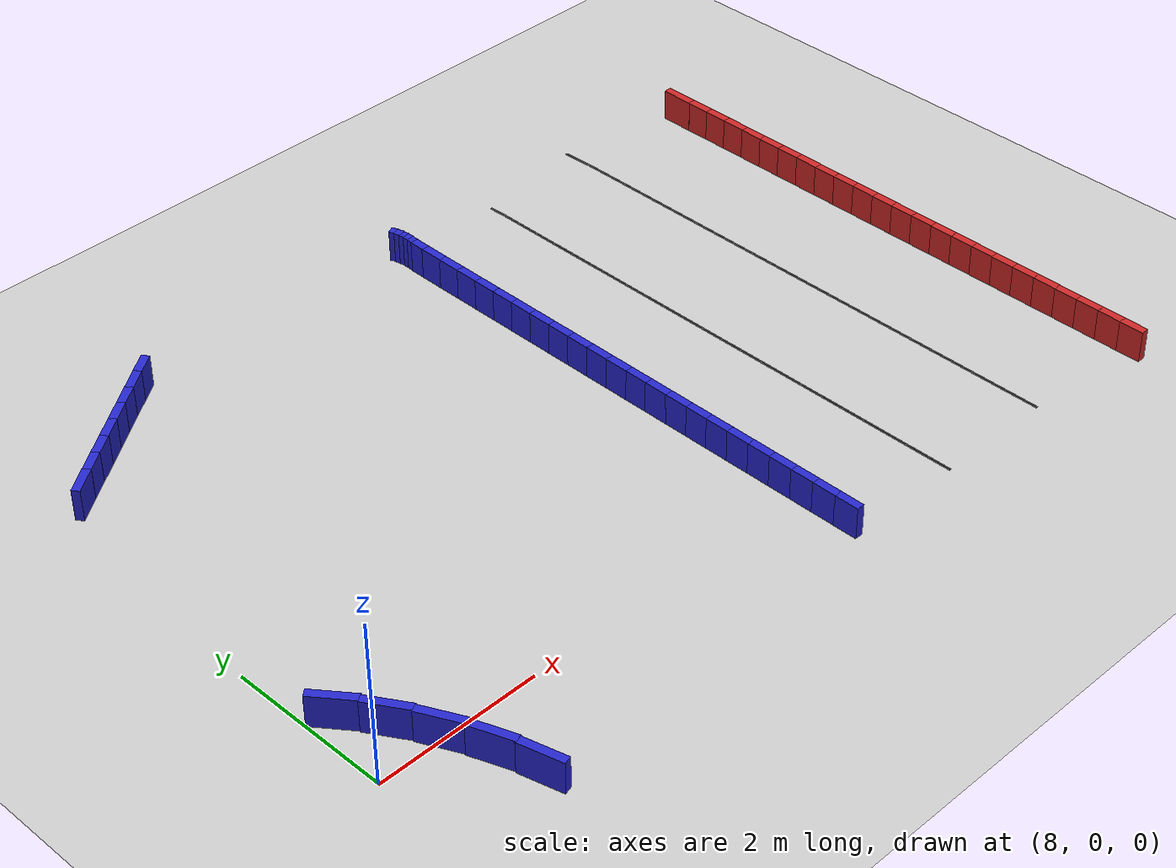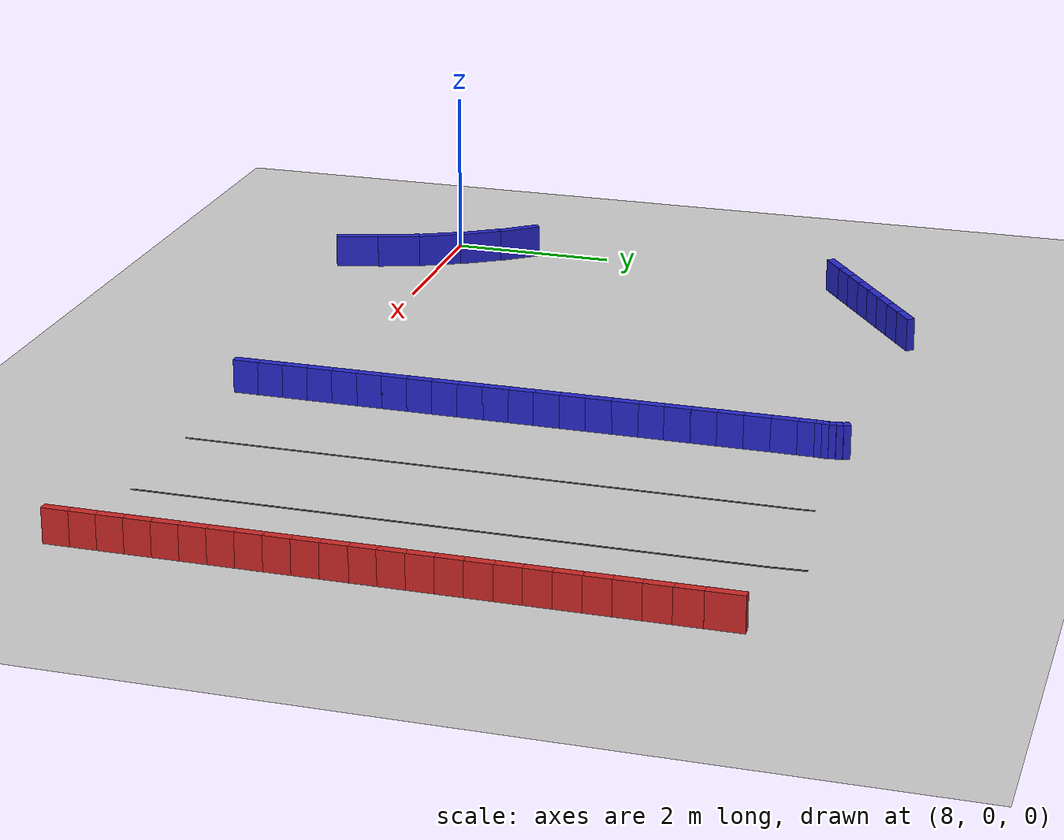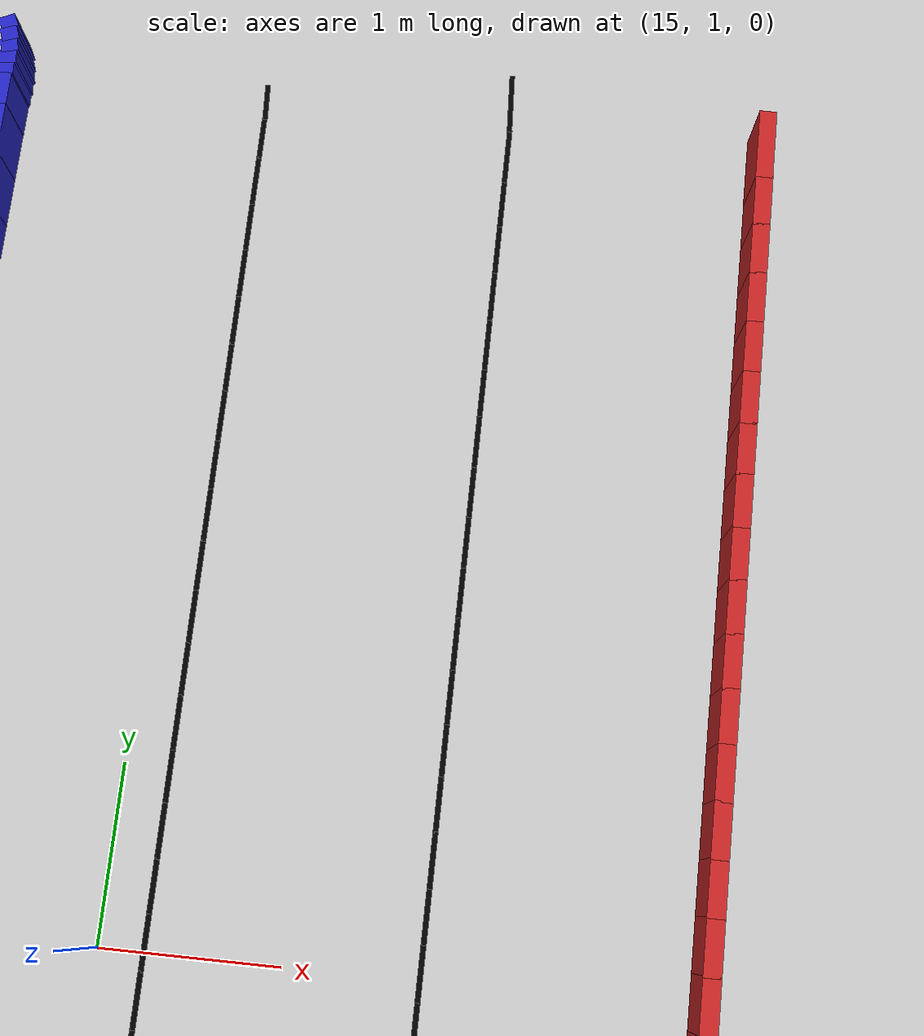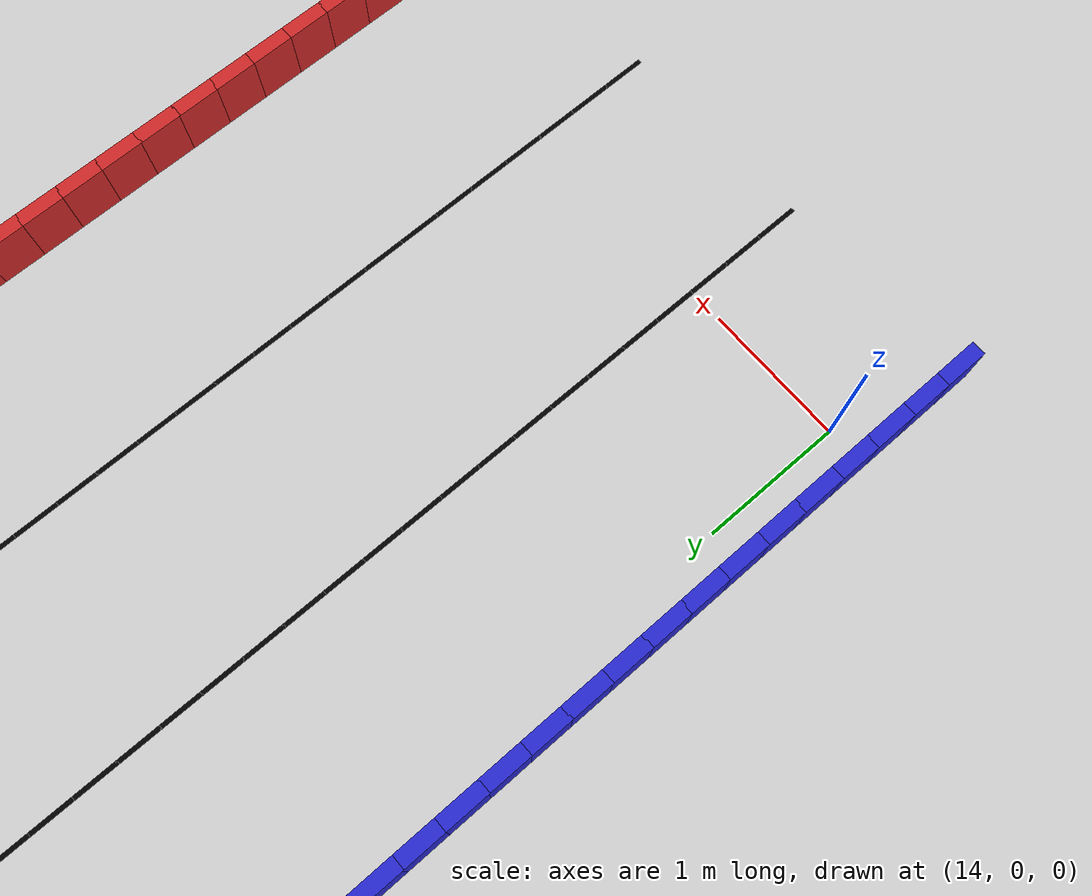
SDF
<sdf version="1.6">
 <world name="3lane_track">
  <include><uri>model://ground_plane</uri></include>
  <include><uri>model://sun</uri></include>
  <model name="iw_98">
   <static>true</static>
   <pose>8.2136 0.8677 0.200 0 0 -0.9121</pose>
   <link name="l">
    <collision name="c"><geometry><box><size>0.5416 0.1 0.4</size></box></geometry></collision>
    <visual name="v">
     <geometry><box><size>0.5416 0.1 0.4</size></box></geometry>
     <material><ambient>0.15 0.15 0.8 1</ambient><diffuse>0.15 0.15 0.8 1</diffuse></material>
    </visual>
   </link>
  </model>
  <model name="iw_99">
   <static>true</static>
   <pose>8.5074 0.4254 0.200 0 0 -1.0134</pose>
   <link name="l">
    <collision name="c"><geometry><box><size>0.5416 0.1 0.4</size></box></geometry></collision>
    <visual name="v">
     <geometry><box><size>0.5416 0.1 0.4</size></box></geometry>
     <material><ambient>0.15 0.15 0.8 1</ambient><diffuse>0.15 0.15 0.8 1</diffuse></material>
    </visual>
   </link>
  </model>
  <model name="iw_100">
   <static>true</static>
   <pose>8.7550 -0.0444 0.200 0 0 -1.1148</pose>
   <link name="l">
    <collision name="c"><geometry><box><size>0.5416 0.1 0.4</size></box></geometry></collision>
    <visual name="v">
     <geometry><box><size>0.5416 0.1 0.4</size></box></geometry>
     <material><ambient>0.15 0.15 0.8 1</ambient><diffuse>0.15 0.15 0.8 1</diffuse></material>
    </visual>
   </link>
  </model>
  <model name="iw_101">
   <static>true</static>
   <pose>8.9537 -0.5367 0.200 0 0 -1.2161</pose>
   <link name="l">
    <collision name="c"><geometry><box><size>0.5416 0.1 0.4</size></box></geometry></collision>
    <visual name="v">
     <geometry><box><size>0.5416 0.1 0.4</size></box></geometry>
     <material><ambient>0.15 0.15 0.8 1</ambient><diffuse>0.15 0.15 0.8 1</diffuse></material>
    </visual>
   </link>
  </model>
  <model name="iw_102">
   <static>true</static>
   <pose>9.1016 -1.0467 0.200 0 0 -1.3174</pose>
   <link name="l">
    <collision name="c"><geometry><box><size>0.5416 0.1 0.4</size></box></geometry></collision>
    <visual name="v">
     <geometry><box><size>0.5416 0.1 0.4</size></box></geometry>
     <material><ambient>0.15 0.15 0.8 1</ambient><diffuse>0.15 0.15 0.8 1</diffuse></material>
    </visual>
   </link>
  </model>
  <model name="iw_176">
   <static>true</static>
   <pose>13.7500 -0.7500 0.200 0 0 1.5708</pose>
   <link name="l">
    <collision name="c"><geometry><box><size>0.3100 0.1 0.4</size></box></geometry></collision>
    <visual name="v">
     <geometry><box><size>0.3100 0.1 0.4</size></box></geometry>
     <material><ambient>0.15 0.15 0.8 1</ambient><diffuse>0.15 0.15 0.8 1</diffuse></material>
    </visual>
   </link>
  </model>
  <model name="iw_177">
   <static>true</static>
   <pose>13.7500 -0.4500 0.200 0 0 1.5708</pose>
   <link name="l">
    <collision name="c"><geometry><box><size>0.3100 0.1 0.4</size></box></geometry></collision>
    <visual name="v">
     <geometry><box><size>0.3100 0.1 0.4</size></box></geometry>
     <material><ambient>0.15 0.15 0.8 1</ambient><diffuse>0.15 0.15 0.8 1</diffuse></material>
    </visual>
   </link>
  </model>
  <model name="iw_178">
   <static>true</static>
   <pose>13.7500 -0.1500 0.200 0 0 1.5708</pose>
   <link name="l">
    <collision name="c"><geometry><box><size>0.3100 0.1 0.4</size></box></geometry></collision>
    <visual name="v">
     <geometry><box><size>0.3100 0.1 0.4</size></box></geometry>
     <material><ambient>0.15 0.15 0.8 1</ambient><diffuse>0.15 0.15 0.8 1</diffuse></material>
    </visual>
   </link>
  </model>
  <model name="iw_179">
   <static>true</static>
   <pose>13.7500 0.1500 0.200 0 0 1.5708</pose>
   <link name="l">
    <collision name="c"><geometry><box><size>0.3100 0.1 0.4</size></box></geometry></collision>
    <visual name="v">
     <geometry><box><size>0.3100 0.1 0.4</size></box></geometry>
     <material><ambient>0.15 0.15 0.8 1</ambient><diffuse>0.15 0.15 0.8 1</diffuse></material>
    </visual>
   </link>
  </model>
  <model name="iw_180">
   <static>true</static>
   <pose>13.7500 0.4500 0.200 0 0 1.5708</pose>
   <link name="l">
    <collision name="c"><geometry><box><size>0.3100 0.1 0.4</size></box></geometry></collision>
    <visual name="v">
     <geometry><box><size>0.3100 0.1 0.4</size></box></geometry>
     <material><ambient>0.15 0.15 0.8 1</ambient><diffuse>0.15 0.15 0.8 1</diffuse></material>
    </visual>
   </link>
  </model>
  <model name="iw_181">
   <static>true</static>
   <pose>13.7500 0.7500 0.200 0 0 1.5708</pose>
   <link name="l">
    <collision name="c"><geometry><box><size>0.3100 0.1 0.4</size></box></geometry></collision>
    <visual name="v">
     <geometry><box><size>0.3100 0.1 0.4</size></box></geometry>
     <material><ambient>0.15 0.15 0.8 1</ambient><diffuse>0.15 0.15 0.8 1</diffuse></material>
    </visual>
   </link>
  </model>
  <model name="iw_182">
   <static>true</static>
   <pose>13.7500 1.0500 0.200 0 0 1.5708</pose>
   <link name="l">
    <collision name="c"><geometry><box><size>0.3100 0.1 0.4</size></box></geometry></collision>
    <visual name="v">
     <geometry><box><size>0.3100 0.1 0.4</size></box></geometry>
     <material><ambient>0.15 0.15 0.8 1</ambient><diffuse>0.15 0.15 0.8 1</diffuse></material>
    </visual>
   </link>
  </model>
  <model name="iw_183">
   <static>true</static>
   <pose>13.7500 1.3500 0.200 0 0 1.5708</pose>
   <link name="l">
    <collision name="c"><geometry><box><size>0.3100 0.1 0.4</size></box></geometry></collision>
    <visual name="v">
     <geometry><box><size>0.3100 0.1 0.4</size></box></geometry>
     <material><ambient>0.15 0.15 0.8 1</ambient><diffuse>0.15 0.15 0.8 1</diffuse></material>
    </visual>
   </link>
  </model>
  <model name="iw_184">
   <static>true</static>
   <pose>13.7500 1.6500 0.200 0 0 1.5708</pose>
   <link name="l">
    <collision name="c"><geometry><box><size>0.3100 0.1 0.4</size></box></geometry></collision>
    <visual name="v">
     <geometry><box><size>0.3100 0.1 0.4</size></box></geometry>
     <material><ambient>0.15 0.15 0.8 1</ambient><diffuse>0.15 0.15 0.8 1</diffuse></material>
    </visual>
   </link>
  </model>
  <model name="iw_185">
   <static>true</static>
   <pose>13.7500 1.9500 0.200 0 0 1.5708</pose>
   <link name="l">
    <collision name="c"><geometry><box><size>0.3100 0.1 0.4</size></box></geometry></collision>
    <visual name="v">
     <geometry><box><size>0.3100 0.1 0.4</size></box></geometry>
     <material><ambient>0.15 0.15 0.8 1</ambient><diffuse>0.15 0.15 0.8 1</diffuse></material>
    </visual>
   </link>
  </model>
  <model name="iw_186">
   <static>true</static>
   <pose>13.7500 2.2500 0.200 0 0 1.5708</pose>
   <link name="l">
    <collision name="c"><geometry><box><size>0.3100 0.1 0.4</size></box></geometry></collision>
    <visual name="v">
     <geometry><box><size>0.3100 0.1 0.4</size></box></geometry>
     <material><ambient>0.15 0.15 0.8 1</ambient><diffuse>0.15 0.15 0.8 1</diffuse></material>
    </visual>
   </link>
  </model>
  <model name="iw_187">
   <static>true</static>
   <pose>13.7500 2.5500 0.200 0 0 1.5708</pose>
   <link name="l">
    <collision name="c"><geometry><box><size>0.3100 0.1 0.4</size></box></geometry></collision>
    <visual name="v">
     <geometry><box><size>0.3100 0.1 0.4</size></box></geometry>
     <material><ambient>0.15 0.15 0.8 1</ambient><diffuse>0.15 0.15 0.8 1</diffuse></material>
    </visual>
   </link>
  </model>
  <model name="iw_188">
   <static>true</static>
   <pose>13.7500 2.8500 0.200 0 0 1.5708</pose>
   <link name="l">
    <collision name="c"><geometry><box><size>0.3100 0.1 0.4</size></box></geometry></collision>
    <visual name="v">
     <geometry><box><size>0.3100 0.1 0.4</size></box></geometry>
     <material><ambient>0.15 0.15 0.8 1</ambient><diffuse>0.15 0.15 0.8 1</diffuse></material>
    </visual>
   </link>
  </model>
  <model name="iw_189">
   <static>true</static>
   <pose>13.7500 3.1500 0.200 0 0 1.5708</pose>
   <link name="l">
    <collision name="c"><geometry><box><size>0.3100 0.1 0.4</size></box></geometry></collision>
    <visual name="v">
     <geometry><box><size>0.3100 0.1 0.4</size></box></geometry>
     <material><ambient>0.15 0.15 0.8 1</ambient><diffuse>0.15 0.15 0.8 1</diffuse></material>
    </visual>
   </link>
  </model>
  <model name="iw_190">
   <static>true</static>
   <pose>13.7500 3.4500 0.200 0 0 1.5708</pose>
   <link name="l">
    <collision name="c"><geometry><box><size>0.3100 0.1 0.4</size></box></geometry></collision>
    <visual name="v">
     <geometry><box><size>0.3100 0.1 0.4</size></box></geometry>
     <material><ambient>0.15 0.15 0.8 1</ambient><diffuse>0.15 0.15 0.8 1</diffuse></material>
    </visual>
   </link>
  </model>
  <model name="iw_191">
   <static>true</static>
   <pose>13.7500 3.7500 0.200 0 0 1.5708</pose>
   <link name="l">
    <collision name="c"><geometry><box><size>0.3100 0.1 0.4</size></box></geometry></collision>
    <visual name="v">
     <geometry><box><size>0.3100 0.1 0.4</size></box></geometry>
     <material><ambient>0.15 0.15 0.8 1</ambient><diffuse>0.15 0.15 0.8 1</diffuse></material>
    </visual>
   </link>
  </model>
  <model name="iw_192">
   <static>true</static>
   <pose>13.7500 4.0500 0.200 0 0 1.5708</pose>
   <link name="l">
    <collision name="c"><geometry><box><size>0.3100 0.1 0.4</size></box></geometry></collision>
    <visual name="v">
     <geometry><box><size>0.3100 0.1 0.4</size></box></geometry>
     <material><ambient>0.15 0.15 0.8 1</ambient><diffuse>0.15 0.15 0.8 1</diffuse></material>
    </visual>
   </link>
  </model>
  <model name="iw_193">
   <static>true</static>
   <pose>13.7500 4.3500 0.200 0 0 1.5708</pose>
   <link name="l">
    <collision name="c"><geometry><box><size>0.3100 0.1 0.4</size></box></geometry></collision>
    <visual name="v">
     <geometry><box><size>0.3100 0.1 0.4</size></box></geometry>
     <material><ambient>0.15 0.15 0.8 1</ambient><diffuse>0.15 0.15 0.8 1</diffuse></material>
    </visual>
   </link>
  </model>
  <model name="iw_194">
   <static>true</static>
   <pose>13.7500 4.6500 0.200 0 0 1.5708</pose>
   <link name="l">
    <collision name="c"><geometry><box><size>0.3100 0.1 0.4</size></box></geometry></collision>
    <visual name="v">
     <geometry><box><size>0.3100 0.1 0.4</size></box></geometry>
     <material><ambient>0.15 0.15 0.8 1</ambient><diffuse>0.15 0.15 0.8 1</diffuse></material>
    </visual>
   </link>
  </model>
  <model name="iw_195">
   <static>true</static>
   <pose>13.7500 4.9500 0.200 0 0 1.5708</pose>
   <link name="l">
    <collision name="c"><geometry><box><size>0.3100 0.1 0.4</size></box></geometry></collision>
    <visual name="v">
     <geometry><box><size>0.3100 0.1 0.4</size></box></geometry>
     <material><ambient>0.15 0.15 0.8 1</ambient><diffuse>0.15 0.15 0.8 1</diffuse></material>
    </visual>
   </link>
  </model>
  <model name="iw_196">
   <static>true</static>
   <pose>13.7500 5.2500 0.200 0 0 1.5708</pose>
   <link name="l">
    <collision name="c"><geometry><box><size>0.3100 0.1 0.4</size></box></geometry></collision>
    <visual name="v">
     <geometry><box><size>0.3100 0.1 0.4</size></box></geometry>
     <material><ambient>0.15 0.15 0.8 1</ambient><diffuse>0.15 0.15 0.8 1</diffuse></material>
    </visual>
   </link>
  </model>
  <model name="iw_197">
   <static>true</static>
   <pose>13.7500 5.5500 0.200 0 0 1.5708</pose>
   <link name="l">
    <collision name="c"><geometry><box><size>0.3100 0.1 0.4</size></box></geometry></collision>
    <visual name="v">
     <geometry><box><size>0.3100 0.1 0.4</size></box></geometry>
     <material><ambient>0.15 0.15 0.8 1</ambient><diffuse>0.15 0.15 0.8 1</diffuse></material>
    </visual>
   </link>
  </model>
  <model name="iw_198">
   <static>true</static>
   <pose>13.7514 5.7948 0.200 0 0 1.5708</pose>
   <link name="l">
    <collision name="c"><geometry><box><size>0.1996 0.1 0.4</size></box></geometry></collision>
    <visual name="v">
     <geometry><box><size>0.1996 0.1 0.4</size></box></geometry>
     <material><ambient>0.15 0.15 0.8 1</ambient><diffuse>0.15 0.15 0.8 1</diffuse></material>
    </visual>
   </link>
  </model>
  <model name="iw_199">
   <static>true</static>
   <pose>13.7563 5.9268 0.200 0 0 1.6199</pose>
   <link name="l">
    <collision name="c"><geometry><box><size>0.0847 0.1 0.4</size></box></geometry></collision>
    <visual name="v">
     <geometry><box><size>0.0847 0.1 0.4</size></box></geometry>
     <material><ambient>0.15 0.15 0.8 1</ambient><diffuse>0.15 0.15 0.8 1</diffuse></material>
    </visual>
   </link>
  </model>
  <model name="iw_200">
   <static>true</static>
   <pose>13.7598 6.0012 0.200 0 0 1.7181</pose>
   <link name="l">
    <collision name="c"><geometry><box><size>0.0847 0.1 0.4</size></box></geometry></collision>
    <visual name="v">
     <geometry><box><size>0.0847 0.1 0.4</size></box></geometry>
     <material><ambient>0.15 0.15 0.8 1</ambient><diffuse>0.15 0.15 0.8 1</diffuse></material>
    </visual>
   </link>
  </model>
  <model name="iw_201">
   <static>true</static>
   <pose>13.7561 6.0757 0.200 0 0 1.8162</pose>
   <link name="l">
    <collision name="c"><geometry><box><size>0.0847 0.1 0.4</size></box></geometry></collision>
    <visual name="v">
     <geometry><box><size>0.0847 0.1 0.4</size></box></geometry>
     <material><ambient>0.15 0.15 0.8 1</ambient><diffuse>0.15 0.15 0.8 1</diffuse></material>
    </visual>
   </link>
  </model>
  <model name="iw_202">
   <static>true</static>
   <pose>13.7450 6.1495 0.200 0 0 1.9144</pose>
   <link name="l">
    <collision name="c"><geometry><box><size>0.0847 0.1 0.4</size></box></geometry></collision>
    <visual name="v">
     <geometry><box><size>0.0847 0.1 0.4</size></box></geometry>
     <material><ambient>0.15 0.15 0.8 1</ambient><diffuse>0.15 0.15 0.8 1</diffuse></material>
    </visual>
   </link>
  </model>
  <model name="iw_203">
   <static>true</static>
   <pose>13.7268 6.2218 0.200 0 0 2.0126</pose>
   <link name="l">
    <collision name="c"><geometry><box><size>0.0847 0.1 0.4</size></box></geometry></collision>
    <visual name="v">
     <geometry><box><size>0.0847 0.1 0.4</size></box></geometry>
     <material><ambient>0.15 0.15 0.8 1</ambient><diffuse>0.15 0.15 0.8 1</diffuse></material>
    </visual>
   </link>
  </model>
  <model name="iw_229">
   <static>true</static>
   <pose>10.0943 6.2624 0.200 0 0 -2.5307</pose>
   <link name="l">
    <collision name="c"><geometry><box><size>0.2913 0.1 0.4</size></box></geometry></collision>
    <visual name="v">
     <geometry><box><size>0.2913 0.1 0.4</size></box></geometry>
     <material><ambient>0.15 0.15 0.8 1</ambient><diffuse>0.15 0.15 0.8 1</diffuse></material>
    </visual>
   </link>
  </model>
  <model name="iw_230">
   <static>true</static>
   <pose>9.8639 6.1011 0.200 0 0 -2.5307</pose>
   <link name="l">
    <collision name="c"><geometry><box><size>0.2913 0.1 0.4</size></box></geometry></collision>
    <visual name="v">
     <geometry><box><size>0.2913 0.1 0.4</size></box></geometry>
     <material><ambient>0.15 0.15 0.8 1</ambient><diffuse>0.15 0.15 0.8 1</diffuse></material>
    </visual>
   </link>
  </model>
  <model name="iw_231">
   <static>true</static>
   <pose>9.6335 5.9398 0.200 0 0 -2.5307</pose>
   <link name="l">
    <collision name="c"><geometry><box><size>0.2913 0.1 0.4</size></box></geometry></collision>
    <visual name="v">
     <geometry><box><size>0.2913 0.1 0.4</size></box></geometry>
     <material><ambient>0.15 0.15 0.8 1</ambient><diffuse>0.15 0.15 0.8 1</diffuse></material>
    </visual>
   </link>
  </model>
  <model name="iw_232">
   <static>true</static>
   <pose>9.4031 5.7785 0.200 0 0 -2.5307</pose>
   <link name="l">
    <collision name="c"><geometry><box><size>0.2913 0.1 0.4</size></box></geometry></collision>
    <visual name="v">
     <geometry><box><size>0.2913 0.1 0.4</size></box></geometry>
     <material><ambient>0.15 0.15 0.8 1</ambient><diffuse>0.15 0.15 0.8 1</diffuse></material>
    </visual>
   </link>
  </model>
  <model name="iw_233">
   <static>true</static>
   <pose>9.1727 5.6172 0.200 0 0 -2.5307</pose>
   <link name="l">
    <collision name="c"><geometry><box><size>0.2913 0.1 0.4</size></box></geometry></collision>
    <visual name="v">
     <geometry><box><size>0.2913 0.1 0.4</size></box></geometry>
     <material><ambient>0.15 0.15 0.8 1</ambient><diffuse>0.15 0.15 0.8 1</diffuse></material>
    </visual>
   </link>
  </model>
  <model name="iw_234">
   <static>true</static>
   <pose>8.9423 5.4558 0.200 0 0 -2.5307</pose>
   <link name="l">
    <collision name="c"><geometry><box><size>0.2913 0.1 0.4</size></box></geometry></collision>
    <visual name="v">
     <geometry><box><size>0.2913 0.1 0.4</size></box></geometry>
     <material><ambient>0.15 0.15 0.8 1</ambient><diffuse>0.15 0.15 0.8 1</diffuse></material>
    </visual>
   </link>
  </model>
  <model name="iw_235">
   <static>true</static>
   <pose>8.7119 5.2945 0.200 0 0 -2.5307</pose>
   <link name="l">
    <collision name="c"><geometry><box><size>0.2913 0.1 0.4</size></box></geometry></collision>
    <visual name="v">
     <geometry><box><size>0.2913 0.1 0.4</size></box></geometry>
     <material><ambient>0.15 0.15 0.8 1</ambient><diffuse>0.15 0.15 0.8 1</diffuse></material>
    </visual>
   </link>
  </model>
  <model name="iw_236">
   <static>true</static>
   <pose>8.4499 5.1118 0.200 0 0 -2.5307</pose>
   <link name="l">
    <collision name="c"><geometry><box><size>0.3676 0.1 0.4</size></box></geometry></collision>
    <visual name="v">
     <geometry><box><size>0.3676 0.1 0.4</size></box></geometry>
     <material><ambient>0.15 0.15 0.8 1</ambient><diffuse>0.15 0.15 0.8 1</diffuse></material>
    </visual>
   </link>
  </model>
  <model name="ow_175">
   <static>true</static>
   <pose>18.2500 -1.0500 0.200 0 0 1.5708</pose>
   <link name="l">
    <collision name="c"><geometry><box><size>0.3100 0.1 0.4</size></box></geometry></collision>
    <visual name="v">
     <geometry><box><size>0.3100 0.1 0.4</size></box></geometry>
     <material><ambient>0.8 0.15 0.15 1</ambient><diffuse>0.8 0.15 0.15 1</diffuse></material>
    </visual>
   </link>
  </model>
  <model name="ow_176">
   <static>true</static>
   <pose>18.2500 -0.7500 0.200 0 0 1.5708</pose>
   <link name="l">
    <collision name="c"><geometry><box><size>0.3100 0.1 0.4</size></box></geometry></collision>
    <visual name="v">
     <geometry><box><size>0.3100 0.1 0.4</size></box></geometry>
     <material><ambient>0.8 0.15 0.15 1</ambient><diffuse>0.8 0.15 0.15 1</diffuse></material>
    </visual>
   </link>
  </model>
  <model name="ow_177">
   <static>true</static>
   <pose>18.2500 -0.4500 0.200 0 0 1.5708</pose>
   <link name="l">
    <collision name="c"><geometry><box><size>0.3100 0.1 0.4</size></box></geometry></collision>
    <visual name="v">
     <geometry><box><size>0.3100 0.1 0.4</size></box></geometry>
     <material><ambient>0.8 0.15 0.15 1</ambient><diffuse>0.8 0.15 0.15 1</diffuse></material>
    </visual>
   </link>
  </model>
  <model name="ow_178">
   <static>true</static>
   <pose>18.2500 -0.1500 0.200 0 0 1.5708</pose>
   <link name="l">
    <collision name="c"><geometry><box><size>0.3100 0.1 0.4</size></box></geometry></collision>
    <visual name="v">
     <geometry><box><size>0.3100 0.1 0.4</size></box></geometry>
     <material><ambient>0.8 0.15 0.15 1</ambient><diffuse>0.8 0.15 0.15 1</diffuse></material>
    </visual>
   </link>
  </model>
  <model name="ow_179">
   <static>true</static>
   <pose>18.2500 0.1500 0.200 0 0 1.5708</pose>
   <link name="l">
    <collision name="c"><geometry><box><size>0.3100 0.1 0.4</size></box></geometry></collision>
    <visual name="v">
     <geometry><box><size>0.3100 0.1 0.4</size></box></geometry>
     <material><ambient>0.8 0.15 0.15 1</ambient><diffuse>0.8 0.15 0.15 1</diffuse></material>
    </visual>
   </link>
  </model>
  <model name="ow_180">
   <static>true</static>
   <pose>18.2500 0.4500 0.200 0 0 1.5708</pose>
   <link name="l">
    <collision name="c"><geometry><box><size>0.3100 0.1 0.4</size></box></geometry></collision>
    <visual name="v">
     <geometry><box><size>0.3100 0.1 0.4</size></box></geometry>
     <material><ambient>0.8 0.15 0.15 1</ambient><diffuse>0.8 0.15 0.15 1</diffuse></material>
    </visual>
   </link>
  </model>
  <model name="ow_181">
   <static>true</static>
   <pose>18.2500 0.7500 0.200 0 0 1.5708</pose>
   <link name="l">
    <collision name="c"><geometry><box><size>0.3100 0.1 0.4</size></box></geometry></collision>
    <visual name="v">
     <geometry><box><size>0.3100 0.1 0.4</size></box></geometry>
     <material><ambient>0.8 0.15 0.15 1</ambient><diffuse>0.8 0.15 0.15 1</diffuse></material>
    </visual>
   </link>
  </model>
  <model name="ow_182">
   <static>true</static>
   <pose>18.2500 1.0500 0.200 0 0 1.5708</pose>
   <link name="l">
    <collision name="c"><geometry><box><size>0.3100 0.1 0.4</size></box></geometry></collision>
    <visual name="v">
     <geometry><box><size>0.3100 0.1 0.4</size></box></geometry>
     <material><ambient>0.8 0.15 0.15 1</ambient><diffuse>0.8 0.15 0.15 1</diffuse></material>
    </visual>
   </link>
  </model>
  <model name="ow_183">
   <static>true</static>
   <pose>18.2500 1.3500 0.200 0 0 1.5708</pose>
   <link name="l">
    <collision name="c"><geometry><box><size>0.3100 0.1 0.4</size></box></geometry></collision>
    <visual name="v">
     <geometry><box><size>0.3100 0.1 0.4</size></box></geometry>
     <material><ambient>0.8 0.15 0.15 1</ambient><diffuse>0.8 0.15 0.15 1</diffuse></material>
    </visual>
   </link>
  </model>
  <model name="ow_184">
   <static>true</static>
   <pose>18.2500 1.6500 0.200 0 0 1.5708</pose>
   <link name="l">
    <collision name="c"><geometry><box><size>0.3100 0.1 0.4</size></box></geometry></collision>
    <visual name="v">
     <geometry><box><size>0.3100 0.1 0.4</size></box></geometry>
     <material><ambient>0.8 0.15 0.15 1</ambient><diffuse>0.8 0.15 0.15 1</diffuse></material>
    </visual>
   </link>
  </model>
  <model name="ow_185">
   <static>true</static>
   <pose>18.2500 1.9500 0.200 0 0 1.5708</pose>
   <link name="l">
    <collision name="c"><geometry><box><size>0.3100 0.1 0.4</size></box></geometry></collision>
    <visual name="v">
     <geometry><box><size>0.3100 0.1 0.4</size></box></geometry>
     <material><ambient>0.8 0.15 0.15 1</ambient><diffuse>0.8 0.15 0.15 1</diffuse></material>
    </visual>
   </link>
  </model>
  <model name="ow_186">
   <static>true</static>
   <pose>18.2500 2.2500 0.200 0 0 1.5708</pose>
   <link name="l">
    <collision name="c"><geometry><box><size>0.3100 0.1 0.4</size></box></geometry></collision>
    <visual name="v">
     <geometry><box><size>0.3100 0.1 0.4</size></box></geometry>
     <material><ambient>0.8 0.15 0.15 1</ambient><diffuse>0.8 0.15 0.15 1</diffuse></material>
    </visual>
   </link>
  </model>
  <model name="ow_187">
   <static>true</static>
   <pose>18.2500 2.5500 0.200 0 0 1.5708</pose>
   <link name="l">
    <collision name="c"><geometry><box><size>0.3100 0.1 0.4</size></box></geometry></collision>
    <visual name="v">
     <geometry><box><size>0.3100 0.1 0.4</size></box></geometry>
     <material><ambient>0.8 0.15 0.15 1</ambient><diffuse>0.8 0.15 0.15 1</diffuse></material>
    </visual>
   </link>
  </model>
  <model name="ow_188">
   <static>true</static>
   <pose>18.2500 2.8500 0.200 0 0 1.5708</pose>
   <link name="l">
    <collision name="c"><geometry><box><size>0.3100 0.1 0.4</size></box></geometry></collision>
    <visual name="v">
     <geometry><box><size>0.3100 0.1 0.4</size></box></geometry>
     <material><ambient>0.8 0.15 0.15 1</ambient><diffuse>0.8 0.15 0.15 1</diffuse></material>
    </visual>
   </link>
  </model>
  <model name="ow_189">
   <static>true</static>
   <pose>18.2500 3.1500 0.200 0 0 1.5708</pose>
   <link name="l">
    <collision name="c"><geometry><box><size>0.3100 0.1 0.4</size></box></geometry></collision>
    <visual name="v">
     <geometry><box><size>0.3100 0.1 0.4</size></box></geometry>
     <material><ambient>0.8 0.15 0.15 1</ambient><diffuse>0.8 0.15 0.15 1</diffuse></material>
    </visual>
   </link>
  </model>
  <model name="ow_190">
   <static>true</static>
   <pose>18.2500 3.4500 0.200 0 0 1.5708</pose>
   <link name="l">
    <collision name="c"><geometry><box><size>0.3100 0.1 0.4</size></box></geometry></collision>
    <visual name="v">
     <geometry><box><size>0.3100 0.1 0.4</size></box></geometry>
     <material><ambient>0.8 0.15 0.15 1</ambient><diffuse>0.8 0.15 0.15 1</diffuse></material>
    </visual>
   </link>
  </model>
  <model name="ow_191">
   <static>true</static>
   <pose>18.2500 3.7500 0.200 0 0 1.5708</pose>
   <link name="l">
    <collision name="c"><geometry><box><size>0.3100 0.1 0.4</size></box></geometry></collision>
    <visual name="v">
     <geometry><box><size>0.3100 0.1 0.4</size></box></geometry>
     <material><ambient>0.8 0.15 0.15 1</ambient><diffuse>0.8 0.15 0.15 1</diffuse></material>
    </visual>
   </link>
  </model>
  <model name="ow_192">
   <static>true</static>
   <pose>18.2500 4.0500 0.200 0 0 1.5708</pose>
   <link name="l">
    <collision name="c"><geometry><box><size>0.3100 0.1 0.4</size></box></geometry></collision>
    <visual name="v">
     <geometry><box><size>0.3100 0.1 0.4</size></box></geometry>
     <material><ambient>0.8 0.15 0.15 1</ambient><diffuse>0.8 0.15 0.15 1</diffuse></material>
    </visual>
   </link>
  </model>
  <model name="ow_193">
   <static>true</static>
   <pose>18.2500 4.3500 0.200 0 0 1.5708</pose>
   <link name="l">
    <collision name="c"><geometry><box><size>0.3100 0.1 0.4</size></box></geometry></collision>
    <visual name="v">
     <geometry><box><size>0.3100 0.1 0.4</size></box></geometry>
     <material><ambient>0.8 0.15 0.15 1</ambient><diffuse>0.8 0.15 0.15 1</diffuse></material>
    </visual>
   </link>
  </model>
  <model name="ow_194">
   <static>true</static>
   <pose>18.2500 4.6500 0.200 0 0 1.5708</pose>
   <link name="l">
    <collision name="c"><geometry><box><size>0.3100 0.1 0.4</size></box></geometry></collision>
    <visual name="v">
     <geometry><box><size>0.3100 0.1 0.4</size></box></geometry>
     <material><ambient>0.8 0.15 0.15 1</ambient><diffuse>0.8 0.15 0.15 1</diffuse></material>
    </visual>
   </link>
  </model>
  <model name="ow_195">
   <static>true</static>
   <pose>18.2500 4.9500 0.200 0 0 1.5708</pose>
   <link name="l">
    <collision name="c"><geometry><box><size>0.3100 0.1 0.4</size></box></geometry></collision>
    <visual name="v">
     <geometry><box><size>0.3100 0.1 0.4</size></box></geometry>
     <material><ambient>0.8 0.15 0.15 1</ambient><diffuse>0.8 0.15 0.15 1</diffuse></material>
    </visual>
   </link>
  </model>
  <model name="ow_196">
   <static>true</static>
   <pose>18.2500 5.2500 0.200 0 0 1.5708</pose>
   <link name="l">
    <collision name="c"><geometry><box><size>0.3100 0.1 0.4</size></box></geometry></collision>
    <visual name="v">
     <geometry><box><size>0.3100 0.1 0.4</size></box></geometry>
     <material><ambient>0.8 0.15 0.15 1</ambient><diffuse>0.8 0.15 0.15 1</diffuse></material>
    </visual>
   </link>
  </model>
  <model name="ow_197">
   <static>true</static>
   <pose>18.2500 5.5500 0.200 0 0 1.5708</pose>
   <link name="l">
    <collision name="c"><geometry><box><size>0.3100 0.1 0.4</size></box></geometry></collision>
    <visual name="v">
     <geometry><box><size>0.3100 0.1 0.4</size></box></geometry>
     <material><ambient>0.8 0.15 0.15 1</ambient><diffuse>0.8 0.15 0.15 1</diffuse></material>
    </visual>
   </link>
  </model>
  <model name="ow_198">
   <static>true</static>
   <pose>18.2486 5.9052 0.200 0 0 1.5708</pose>
   <link name="l">
    <collision name="c"><geometry><box><size>0.4204 0.1 0.4</size></box></geometry></collision>
    <visual name="v">
     <geometry><box><size>0.4204 0.1 0.4</size></box></geometry>
     <material><ambient>0.8 0.15 0.15 1</ambient><diffuse>0.8 0.15 0.15 1</diffuse></material>
    </visual>
   </link>
  </model>
  <model name="line_352">
   <static>true</static>
   <pose>15.2500 -0.7500 0.002 0 0 1.5708</pose>
   <link name="l">
    <visual name="v">
     <geometry><box><size>0.3100 0.03 0.002</size></box></geometry>
     <material><ambient>0 0 0 1</ambient><diffuse>0 0 0 1</diffuse></material>
    </visual>
   </link>
  </model>
  <model name="line_353">
   <static>true</static>
   <pose>16.7500 -0.7500 0.002 0 0 1.5708</pose>
   <link name="l">
    <visual name="v">
     <geometry><box><size>0.3100 0.03 0.002</size></box></geometry>
     <material><ambient>0 0 0 1</ambient><diffuse>0 0 0 1</diffuse></material>
    </visual>
   </link>
  </model>
  <model name="line_354">
   <static>true</static>
   <pose>15.2500 -0.4500 0.002 0 0 1.5708</pose>
   <link name="l">
    <visual name="v">
     <geometry><box><size>0.3100 0.03 0.002</size></box></geometry>
     <material><ambient>0 0 0 1</ambient><diffuse>0 0 0 1</diffuse></material>
    </visual>
   </link>
  </model>
  <model name="line_355">
   <static>true</static>
   <pose>16.7500 -0.4500 0.002 0 0 1.5708</pose>
   <link name="l">
    <visual name="v">
     <geometry><box><size>0.3100 0.03 0.002</size></box></geometry>
     <material><ambient>0 0 0 1</ambient><diffuse>0 0 0 1</diffuse></material>
    </visual>
   </link>
  </model>
  <model name="line_356">
   <static>true</static>
   <pose>15.2500 -0.1500 0.002 0 0 1.5708</pose>
   <link name="l">
    <visual name="v">
     <geometry><box><size>0.3100 0.03 0.002</size></box></geometry>
     <material><ambient>0 0 0 1</ambient><diffuse>0 0 0 1</diffuse></material>
    </visual>
   </link>
  </model>
  <model name="line_357">
   <static>true</static>
   <pose>16.7500 -0.1500 0.002 0 0 1.5708</pose>
   <link name="l">
    <visual name="v">
     <geometry><box><size>0.3100 0.03 0.002</size></box></geometry>
     <material><ambient>0 0 0 1</ambient><diffuse>0 0 0 1</diffuse></material>
    </visual>
   </link>
  </model>
  <model name="line_358">
   <static>true</static>
   <pose>15.2500 0.1500 0.002 0 0 1.5708</pose>
   <link name="l">
    <visual name="v">
     <geometry><box><size>0.3100 0.03 0.002</size></box></geometry>
     <material><ambient>0 0 0 1</ambient><diffuse>0 0 0 1</diffuse></material>
    </visual>
   </link>
  </model>
  <model name="line_359">
   <static>true</static>
   <pose>16.7500 0.1500 0.002 0 0 1.5708</pose>
   <link name="l">
    <visual name="v">
     <geometry><box><size>0.3100 0.03 0.002</size></box></geometry>
     <material><ambient>0 0 0 1</ambient><diffuse>0 0 0 1</diffuse></material>
    </visual>
   </link>
  </model>
  <model name="line_360">
   <static>true</static>
   <pose>15.2500 0.4500 0.002 0 0 1.5708</pose>
   <link name="l">
    <visual name="v">
     <geometry><box><size>0.3100 0.03 0.002</size></box></geometry>
     <material><ambient>0 0 0 1</ambient><diffuse>0 0 0 1</diffuse></material>
    </visual>
   </link>
  </model>
  <model name="line_361">
   <static>true</static>
   <pose>16.7500 0.4500 0.002 0 0 1.5708</pose>
   <link name="l">
    <visual name="v">
     <geometry><box><size>0.3100 0.03 0.002</size></box></geometry>
     <material><ambient>0 0 0 1</ambient><diffuse>0 0 0 1</diffuse></material>
    </visual>
   </link>
  </model>
  <model name="line_362">
   <static>true</static>
   <pose>15.2500 0.7500 0.002 0 0 1.5708</pose>
   <link name="l">
    <visual name="v">
     <geometry><box><size>0.3100 0.03 0.002</size></box></geometry>
     <material><ambient>0 0 0 1</ambient><diffuse>0 0 0 1</diffuse></material>
    </visual>
   </link>
  </model>
  <model name="line_363">
   <static>true</static>
   <pose>16.7500 0.7500 0.002 0 0 1.5708</pose>
   <link name="l">
    <visual name="v">
     <geometry><box><size>0.3100 0.03 0.002</size></box></geometry>
     <material><ambient>0 0 0 1</ambient><diffuse>0 0 0 1</diffuse></material>
    </visual>
   </link>
  </model>
  <model name="line_364">
   <static>true</static>
   <pose>15.2500 1.0500 0.002 0 0 1.5708</pose>
   <link name="l">
    <visual name="v">
     <geometry><box><size>0.3100 0.03 0.002</size></box></geometry>
     <material><ambient>0 0 0 1</ambient><diffuse>0 0 0 1</diffuse></material>
    </visual>
   </link>
  </model>
  <model name="line_365">
   <static>true</static>
   <pose>16.7500 1.0500 0.002 0 0 1.5708</pose>
   <link name="l">
    <visual name="v">
     <geometry><box><size>0.3100 0.03 0.002</size></box></geometry>
     <material><ambient>0 0 0 1</ambient><diffuse>0 0 0 1</diffuse></material>
    </visual>
   </link>
  </model>
  <model name="line_366">
   <static>true</static>
   <pose>15.2500 1.3500 0.002 0 0 1.5708</pose>
   <link name="l">
    <visual name="v">
     <geometry><box><size>0.3100 0.03 0.002</size></box></geometry>
     <material><ambient>0 0 0 1</ambient><diffuse>0 0 0 1</diffuse></material>
    </visual>
   </link>
  </model>
  <model name="line_367">
   <static>true</static>
   <pose>16.7500 1.3500 0.002 0 0 1.5708</pose>
   <link name="l">
    <visual name="v">
     <geometry><box><size>0.3100 0.03 0.002</size></box></geometry>
     <material><ambient>0 0 0 1</ambient><diffuse>0 0 0 1</diffuse></material>
    </visual>
   </link>
  </model>
  <model name="line_368">
   <static>true</static>
   <pose>15.2500 1.6500 0.002 0 0 1.5708</pose>
   <link name="l">
    <visual name="v">
     <geometry><box><size>0.3100 0.03 0.002</size></box></geometry>
     <material><ambient>0 0 0 1</ambient><diffuse>0 0 0 1</diffuse></material>
    </visual>
   </link>
  </model>
  <model name="line_369">
   <static>true</static>
   <pose>16.7500 1.6500 0.002 0 0 1.5708</pose>
   <link name="l">
    <visual name="v">
     <geometry><box><size>0.3100 0.03 0.002</size></box></geometry>
     <material><ambient>0 0 0 1</ambient><diffuse>0 0 0 1</diffuse></material>
    </visual>
   </link>
  </model>
  <model name="line_370">
   <static>true</static>
   <pose>15.2500 1.9500 0.002 0 0 1.5708</pose>
   <link name="l">
    <visual name="v">
     <geometry><box><size>0.3100 0.03 0.002</size></box></geometry>
     <material><ambient>0 0 0 1</ambient><diffuse>0 0 0 1</diffuse></material>
    </visual>
   </link>
  </model>
  <model name="line_371">
   <static>true</static>
   <pose>16.7500 1.9500 0.002 0 0 1.5708</pose>
   <link name="l">
    <visual name="v">
     <geometry><box><size>0.3100 0.03 0.002</size></box></geometry>
     <material><ambient>0 0 0 1</ambient><diffuse>0 0 0 1</diffuse></material>
    </visual>
   </link>
  </model>
  <model name="line_372">
   <static>true</static>
   <pose>15.2500 2.2500 0.002 0 0 1.5708</pose>
   <link name="l">
    <visual name="v">
     <geometry><box><size>0.3100 0.03 0.002</size></box></geometry>
     <material><ambient>0 0 0 1</ambient><diffuse>0 0 0 1</diffuse></material>
    </visual>
   </link>
  </model>
  <model name="line_373">
   <static>true</static>
   <pose>16.7500 2.2500 0.002 0 0 1.5708</pose>
   <link name="l">
    <visual name="v">
     <geometry><box><size>0.3100 0.03 0.002</size></box></geometry>
     <material><ambient>0 0 0 1</ambient><diffuse>0 0 0 1</diffuse></material>
    </visual>
   </link>
  </model>
  <model name="line_374">
   <static>true</static>
   <pose>15.2500 2.5500 0.002 0 0 1.5708</pose>
   <link name="l">
    <visual name="v">
     <geometry><box><size>0.3100 0.03 0.002</size></box></geometry>
     <material><ambient>0 0 0 1</ambient><diffuse>0 0 0 1</diffuse></material>
    </visual>
   </link>
  </model>
  <model name="line_375">
   <static>true</static>
   <pose>16.7500 2.5500 0.002 0 0 1.5708</pose>
   <link name="l">
    <visual name="v">
     <geometry><box><size>0.3100 0.03 0.002</size></box></geometry>
     <material><ambient>0 0 0 1</ambient><diffuse>0 0 0 1</diffuse></material>
    </visual>
   </link>
  </model>
  <model name="line_376">
   <static>true</static>
   <pose>15.2500 2.8500 0.002 0 0 1.5708</pose>
   <link name="l">
    <visual name="v">
     <geometry><box><size>0.3100 0.03 0.002</size></box></geometry>
     <material><ambient>0 0 0 1</ambient><diffuse>0 0 0 1</diffuse></material>
    </visual>
   </link>
  </model>
  <model name="line_377">
   <static>true</static>
   <pose>16.7500 2.8500 0.002 0 0 1.5708</pose>
   <link name="l">
    <visual name="v">
     <geometry><box><size>0.3100 0.03 0.002</size></box></geometry>
     <material><ambient>0 0 0 1</ambient><diffuse>0 0 0 1</diffuse></material>
    </visual>
   </link>
  </model>
  <model name="line_378">
   <static>true</static>
   <pose>15.2500 3.1500 0.002 0 0 1.5708</pose>
   <link name="l">
    <visual name="v">
     <geometry><box><size>0.3100 0.03 0.002</size></box></geometry>
     <material><ambient>0 0 0 1</ambient><diffuse>0 0 0 1</diffuse></material>
    </visual>
   </link>
  </model>
  <model name="line_379">
   <static>true</static>
   <pose>16.7500 3.1500 0.002 0 0 1.5708</pose>
   <link name="l">
    <visual name="v">
     <geometry><box><size>0.3100 0.03 0.002</size></box></geometry>
     <material><ambient>0 0 0 1</ambient><diffuse>0 0 0 1</diffuse></material>
    </visual>
   </link>
  </model>
  <model name="line_380">
   <static>true</static>
   <pose>15.2500 3.4500 0.002 0 0 1.5708</pose>
   <link name="l">
    <visual name="v">
     <geometry><box><size>0.3100 0.03 0.002</size></box></geometry>
     <material><ambient>0 0 0 1</ambient><diffuse>0 0 0 1</diffuse></material>
    </visual>
   </link>
  </model>
  <model name="line_381">
   <static>true</static>
   <pose>16.7500 3.4500 0.002 0 0 1.5708</pose>
   <link name="l">
    <visual name="v">
     <geometry><box><size>0.3100 0.03 0.002</size></box></geometry>
     <material><ambient>0 0 0 1</ambient><diffuse>0 0 0 1</diffuse></material>
    </visual>
   </link>
  </model>
  <model name="line_382">
   <static>true</static>
   <pose>15.2500 3.7500 0.002 0 0 1.5708</pose>
   <link name="l">
    <visual name="v">
     <geometry><box><size>0.3100 0.03 0.002</size></box></geometry>
     <material><ambient>0 0 0 1</ambient><diffuse>0 0 0 1</diffuse></material>
    </visual>
   </link>
  </model>
  <model name="line_383">
   <static>true</static>
   <pose>16.7500 3.7500 0.002 0 0 1.5708</pose>
   <link name="l">
    <visual name="v">
     <geometry><box><size>0.3100 0.03 0.002</size></box></geometry>
     <material><ambient>0 0 0 1</ambient><diffuse>0 0 0 1</diffuse></material>
    </visual>
   </link>
  </model>
  <model name="line_384">
   <static>true</static>
   <pose>15.2500 4.0500 0.002 0 0 1.5708</pose>
   <link name="l">
    <visual name="v">
     <geometry><box><size>0.3100 0.03 0.002</size></box></geometry>
     <material><ambient>0 0 0 1</ambient><diffuse>0 0 0 1</diffuse></material>
    </visual>
   </link>
  </model>
  <model name="line_385">
   <static>true</static>
   <pose>16.7500 4.0500 0.002 0 0 1.5708</pose>
   <link name="l">
    <visual name="v">
     <geometry><box><size>0.3100 0.03 0.002</size></box></geometry>
     <material><ambient>0 0 0 1</ambient><diffuse>0 0 0 1</diffuse></material>
    </visual>
   </link>
  </model>
  <model name="line_386">
   <static>true</static>
   <pose>15.2500 4.3500 0.002 0 0 1.5708</pose>
   <link name="l">
    <visual name="v">
     <geometry><box><size>0.3100 0.03 0.002</size></box></geometry>
     <material><ambient>0 0 0 1</ambient><diffuse>0 0 0 1</diffuse></material>
    </visual>
   </link>
  </model>
  <model name="line_387">
   <static>true</static>
   <pose>16.7500 4.3500 0.002 0 0 1.5708</pose>
   <link name="l">
    <visual name="v">
     <geometry><box><size>0.3100 0.03 0.002</size></box></geometry>
     <material><ambient>0 0 0 1</ambient><diffuse>0 0 0 1</diffuse></material>
    </visual>
   </link>
  </model>
  <model name="line_388">
   <static>true</static>
   <pose>15.2500 4.6500 0.002 0 0 1.5708</pose>
   <link name="l">
    <visual name="v">
     <geometry><box><size>0.3100 0.03 0.002</size></box></geometry>
     <material><ambient>0 0 0 1</ambient><diffuse>0 0 0 1</diffuse></material>
    </visual>
   </link>
  </model>
  <model name="line_389">
   <static>true</static>
   <pose>16.7500 4.6500 0.002 0 0 1.5708</pose>
   <link name="l">
    <visual name="v">
     <geometry><box><size>0.3100 0.03 0.002</size></box></geometry>
     <material><ambient>0 0 0 1</ambient><diffuse>0 0 0 1</diffuse></material>
    </visual>
   </link>
  </model>
  <model name="line_390">
   <static>true</static>
   <pose>15.2500 4.9500 0.002 0 0 1.5708</pose>
   <link name="l">
    <visual name="v">
     <geometry><box><size>0.3100 0.03 0.002</size></box></geometry>
     <material><ambient>0 0 0 1</ambient><diffuse>0 0 0 1</diffuse></material>
    </visual>
   </link>
  </model>
  <model name="line_391">
   <static>true</static>
   <pose>16.7500 4.9500 0.002 0 0 1.5708</pose>
   <link name="l">
    <visual name="v">
     <geometry><box><size>0.3100 0.03 0.002</size></box></geometry>
     <material><ambient>0 0 0 1</ambient><diffuse>0 0 0 1</diffuse></material>
    </visual>
   </link>
  </model>
  <model name="line_392">
   <static>true</static>
   <pose>15.2500 5.2500 0.002 0 0 1.5708</pose>
   <link name="l">
    <visual name="v">
     <geometry><box><size>0.3100 0.03 0.002</size></box></geometry>
     <material><ambient>0 0 0 1</ambient><diffuse>0 0 0 1</diffuse></material>
    </visual>
   </link>
  </model>
  <model name="line_393">
   <static>true</static>
   <pose>16.7500 5.2500 0.002 0 0 1.5708</pose>
   <link name="l">
    <visual name="v">
     <geometry><box><size>0.3100 0.03 0.002</size></box></geometry>
     <material><ambient>0 0 0 1</ambient><diffuse>0 0 0 1</diffuse></material>
    </visual>
   </link>
  </model>
  <model name="line_394">
   <static>true</static>
   <pose>15.2500 5.5500 0.002 0 0 1.5708</pose>
   <link name="l">
    <visual name="v">
     <geometry><box><size>0.3100 0.03 0.002</size></box></geometry>
     <material><ambient>0 0 0 1</ambient><diffuse>0 0 0 1</diffuse></material>
    </visual>
   </link>
  </model>
  <model name="line_395">
   <static>true</static>
   <pose>16.7500 5.5500 0.002 0 0 1.5708</pose>
   <link name="l">
    <visual name="v">
     <geometry><box><size>0.3100 0.03 0.002</size></box></geometry>
     <material><ambient>0 0 0 1</ambient><diffuse>0 0 0 1</diffuse></material>
    </visual>
   </link>
  </model>
  <model name="line_396">
   <static>true</static>
   <pose>15.2505 5.8316 0.002 0 0 1.5708</pose>
   <link name="l">
    <visual name="v">
     <geometry><box><size>0.2732 0.03 0.002</size></box></geometry>
     <material><ambient>0 0 0 1</ambient><diffuse>0 0 0 1</diffuse></material>
    </visual>
   </link>
  </model>
  <model name="line_397">
   <static>true</static>
   <pose>16.7495 5.8684 0.002 0 0 1.5708</pose>
   <link name="l">
    <visual name="v">
     <geometry><box><size>0.3468 0.03 0.002</size></box></geometry>
     <material><ambient>0 0 0 1</ambient><diffuse>0 0 0 1</diffuse></material>
    </visual>
   </link>
  </model>
  <model name="line_398">
   <static>true</static>
   <pose>15.2473 6.0736 0.002 0 0 1.6199</pose>
   <link name="l">
    <visual name="v">
     <geometry><box><size>0.2309 0.03 0.002</size></box></geometry>
     <material><ambient>0 0 0 1</ambient><diffuse>0 0 0 1</diffuse></material>
    </visual>
   </link>
  </model>
  <model name="line_399">
   <static>true</static>
   <pose>16.7383 6.2205 0.002 0 0 1.6199</pose>
   <link name="l">
    <visual name="v">
     <geometry><box><size>0.3779 0.03 0.002</size></box></geometry>
     <material><ambient>0 0 0 1</ambient><diffuse>0 0 0 1</diffuse></material>
    </visual>
   </link>
  </model>
 </world>
</sdf>
